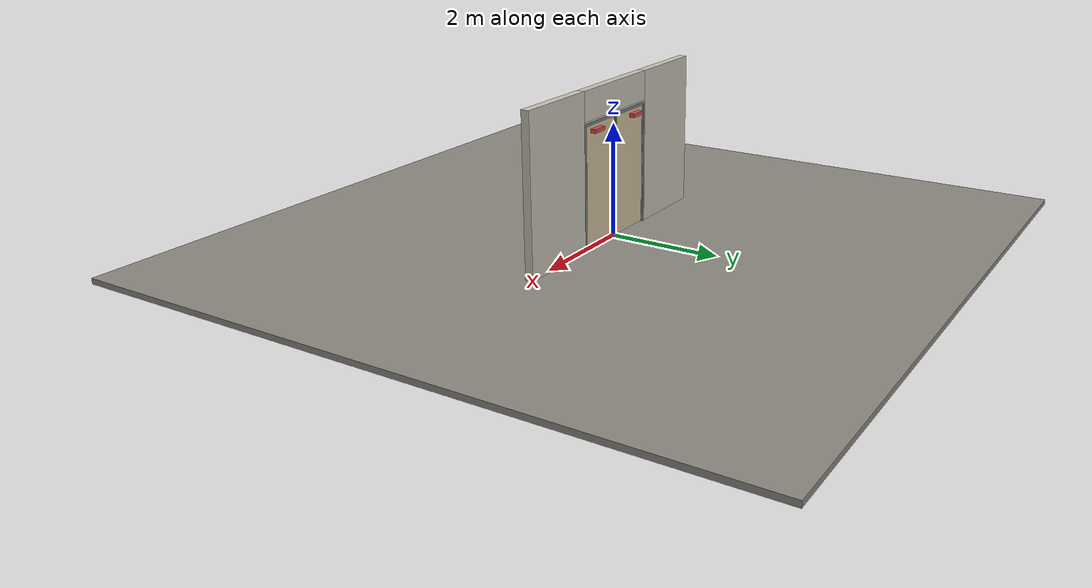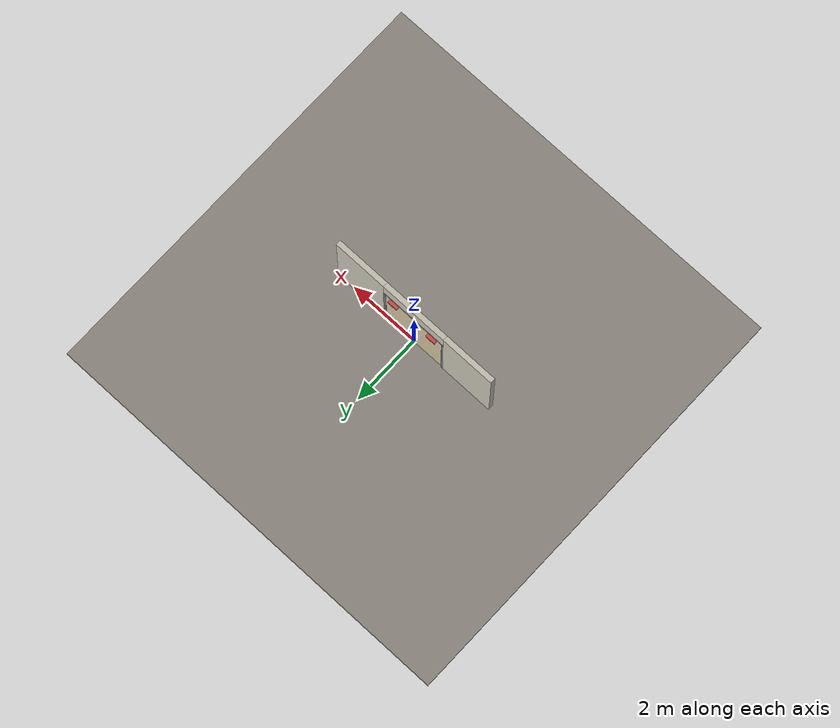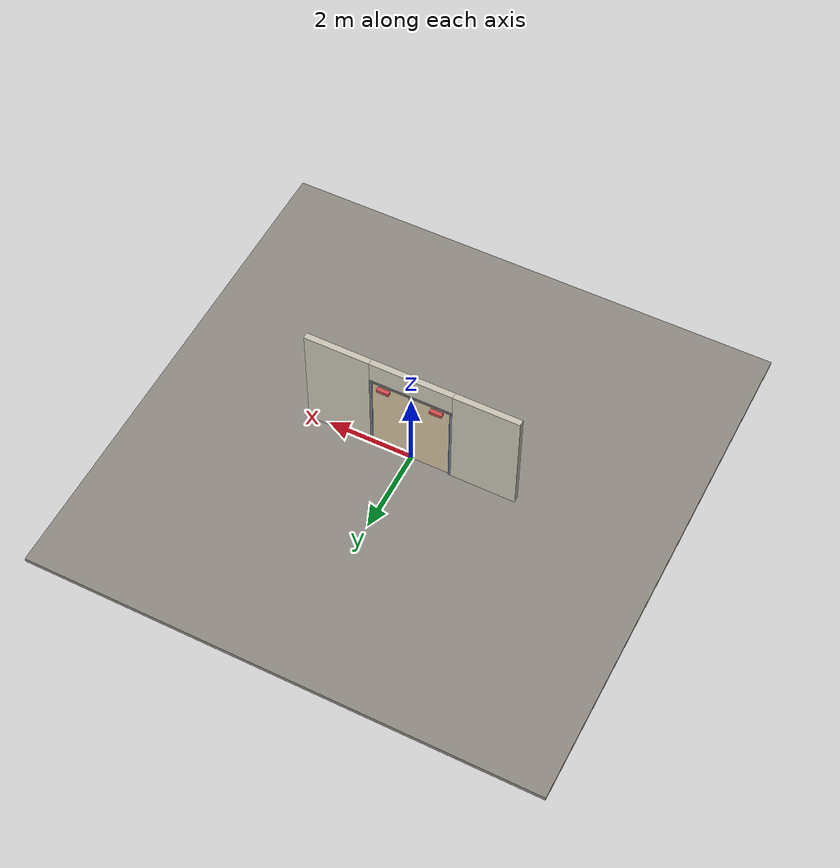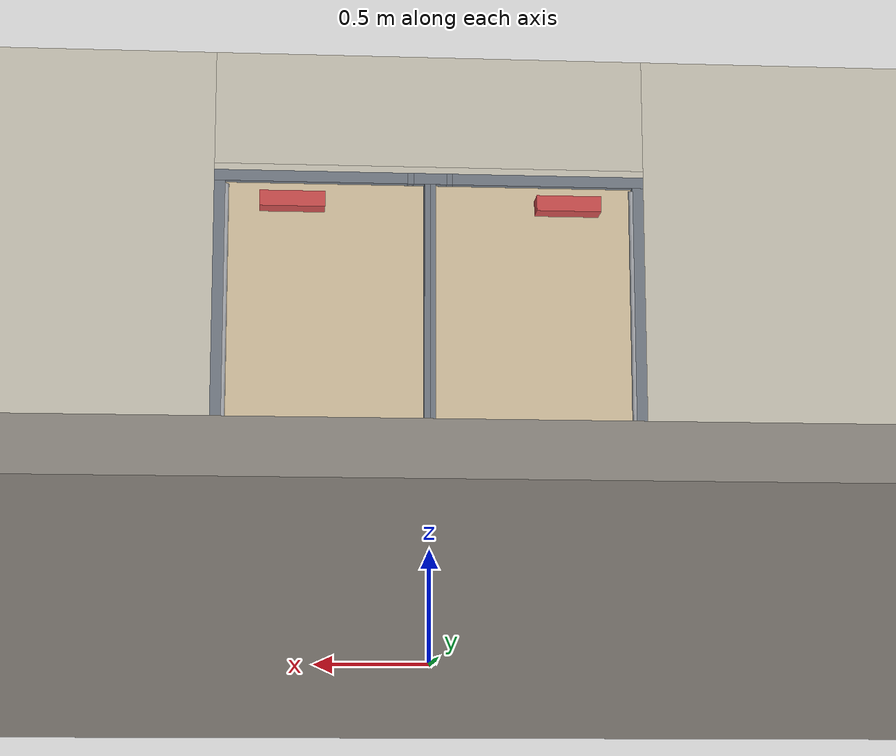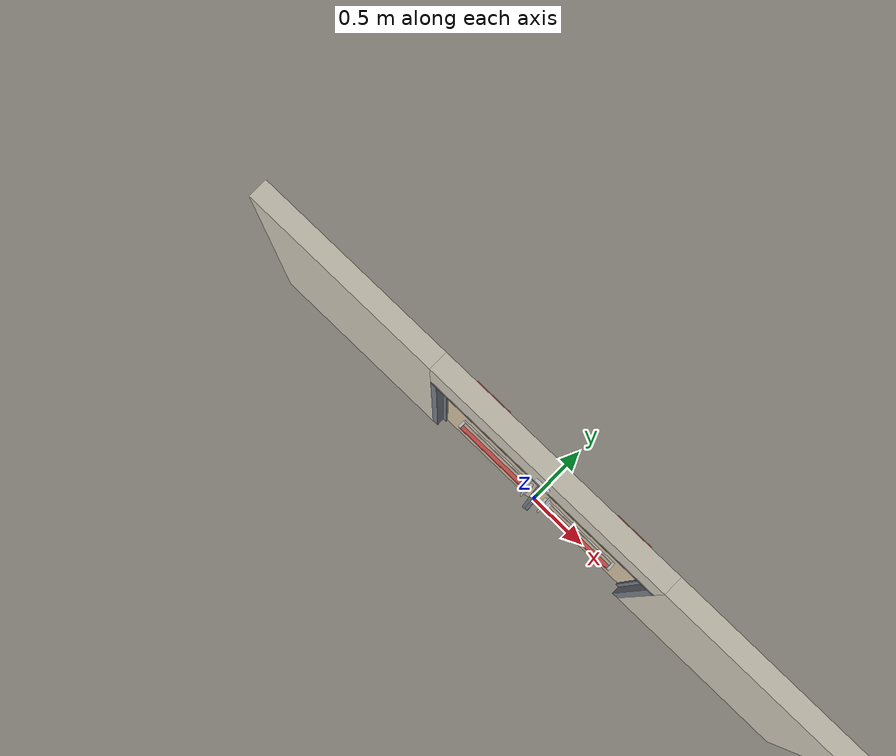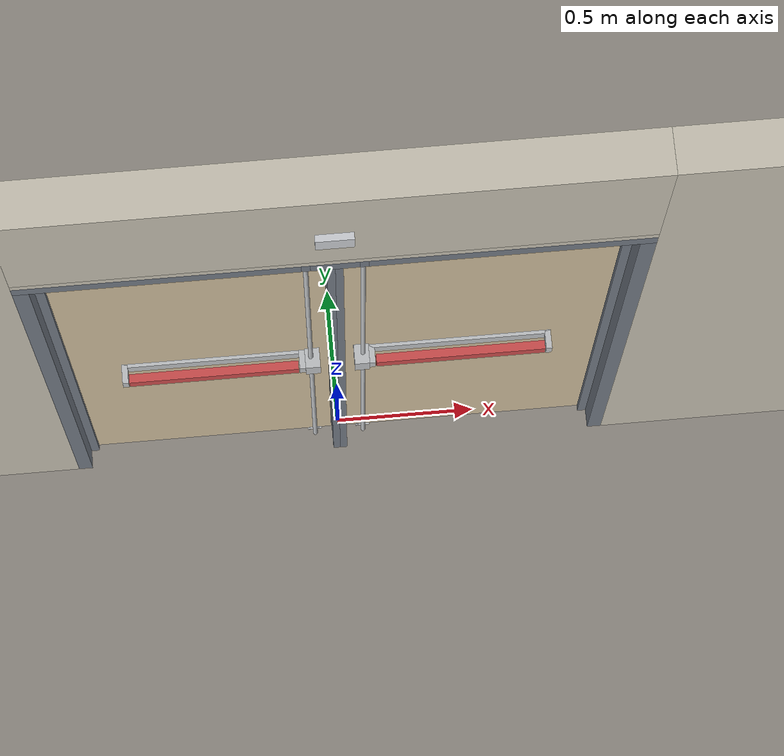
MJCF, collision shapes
<?xml version="1.0" ?>
<mujoco model="db0407_swing_double_full">
  <compiler angle="radian" meshdir="../../hardware" texturedir="../../textures" autolimits="true" inertiafromgeom="false"/>
  <option timestep="0.002" integrator="implicitfast" cone="elliptic" impratio="10" noslip_iterations="3">
    <flag multiccd="enable"/>
  </option>
  <size memory="16M"/>
  <default>
    <geom condim="4" solref="0.005 1" solimp="0.95 0.99 0.001"/>
    <joint solreflimit="0.005 1" solimplimit="0.95 0.99 0.001"/>
    <tendon solreflimit="0.005 1"/>
    <equality solref="0.002 1"/>
  </default>
  <visual>
    <headlight ambient="0.4 0.4 0.4" diffuse="0.7 0.7 0.7" specular="0.2 0.2 0.2"/>
    <quality shadowsize="4096"/>
    <map znear="0.01" zfar="60"/>
  </visual>
  <asset>
    <mesh name="closer_body_fdc4667657" file="closer_body_fdc4667657.obj"/>
    <mesh name="exit_sign_a6449bfa2c" file="exit_sign_a6449bfa2c.obj"/>
    <mesh name="touchbar_pad_ddc72763ea" file="touchbar_pad_ddc72763ea.obj"/>
    <material name="mat_floor" rgba="0.55 0.53 0.5 1" specular="0.2" shininess="0.15" reflectance="0"/>
    <material name="mat_wall" rgba="0.78 0.76 0.7 1" specular="0.2" shininess="0.1" reflectance="0"/>
    <material name="mat_leaf_a" rgba="0.82 0.75 0.62 1" specular="0.23" shininess="0.65" reflectance="0.02"/>
    <material name="mat_hinge" rgba="0.65 0.66 0.68 1" specular="0.74" shininess="0.5" reflectance="0.36"/>
    <material name="mat_op_stainless" rgba="0.75 0.76 0.77 1" specular="0.8" shininess="0.65" reflectance="0.4"/>
    <material name="mat_bolt" rgba="0.75 0.76 0.77 1" specular="0.8" shininess="0.65" reflectance="0.4"/>
    <material name="mat_closer" rgba="0.22 0.17 0.13 1" specular="0.8" shininess="0.6" reflectance="0.4"/>
    <material name="mat_exit_sign" rgba="0.85 0.1 0.1 1" specular="0.2" shininess="0.6" reflectance="0"/>
    <material name="mat_sign_bracket" rgba="0.8 0.81 0.83 1" specular="0.8" shininess="0.6" reflectance="0.4"/>
    <material name="mat_leaf_b" rgba="0.82 0.75 0.62 1" specular="0.23" shininess="0.65" reflectance="0.02"/>
    <material name="mat_frame" rgba="0.45 0.48 0.52 1" specular="0.32" shininess="0.6" reflectance="0.08"/>
    <texture name="skybox" type="skybox" builtin="gradient" rgb1="0.6 0.7 0.85" rgb2="0.9 0.92 0.95" width="256" height="256"/>
  </asset>
  <worldbody>
    <light name="sun" pos="1.5 -2.5 4" dir="-0.3 0.5 -0.8" directional="true" diffuse="0.8 0.8 0.8" specular="0.3 0.3 0.3" castshadow="true"/>
    <light name="fill" pos="-1.5 2.5 3" dir="0.3 -0.5 -0.7" directional="true" diffuse="0.35 0.35 0.4" castshadow="false"/>
    <camera name="robot_view" pos="0 -2.668312 1.812087" xyaxes="1 0 0 0 0.26963 0.962964" fovy="52"/>
    <camera name="far_view" pos="0 2.607312 1.812087" xyaxes="-1 0 0 0 -0.26963 0.962964" fovy="52"/>
    <camera name="iso" pos="-2.004737 -2.246262 2.234138" xyaxes="0.741536 -0.670913 0 0.242917 0.268487 0.932151" fovy="46"/>
    <camera name="detail_handle" pos="0.2845 -0.8305 1.296" xyaxes="0.97561 0.219512 0 -0.070934 0.315262 0.94635" fovy="38"/>
    <geom name="floor" type="box" size="6 6 0.05" pos="0 0 -0.05" material="mat_floor" group="0" contype="1" conaffinity="1" friction="0.8 0.005 0.0001" density="2400"/>
    <geom name="wall_left" type="box" size="0.76575 0.0725 1.3735" pos="-1.73425 -0.0305 1.3735" material="mat_wall" group="0" contype="1" conaffinity="1" friction="0.6 0.005 0.0001" density="800"/>
    <geom name="wall_right" type="box" size="0.76575 0.0725 1.3735" pos="1.73425 -0.0305 1.3735" material="mat_wall" group="0" contype="1" conaffinity="1" friction="0.6 0.005 0.0001" density="800"/>
    <geom name="wall_header" type="box" size="0.9685 0.0725 0.26" pos="0 -0.0305 2.487" material="mat_wall" group="0" contype="1" conaffinity="1" friction="0.6 0.005 0.0001" density="800"/>
    <geom name="leaf_a_bottom_strike_plate" type="box" size="0.0255 0.0255 0.00075" pos="-0.088 0 0.00075" material="mat_bolt" group="0" contype="1" conaffinity="1" friction="0.6 0.005 0.0001" density="7850"/>
    <geom name="leaf_a_bottom_strike_p" type="box" size="0.0215 0.004 0.00575" pos="-0.088 0.0145 0.00725" material="mat_bolt" group="0" contype="1" conaffinity="1" friction="0.6 0.005 0.0001" density="7850"/>
    <geom name="leaf_a_bottom_strike_n" type="box" size="0.0215 0.004 0.00575" pos="-0.088 -0.0145 0.00725" material="mat_bolt" group="0" contype="1" conaffinity="1" friction="0.6 0.005 0.0001" density="7850"/>
    <geom name="leaf_a_bottom_strike_e" type="box" size="0.004 0.0215 0.00575" pos="-0.0735 0 0.00725" material="mat_bolt" group="0" contype="1" conaffinity="1" friction="0.6 0.005 0.0001" density="7850"/>
    <geom name="exit_sign" type="mesh" mesh="exit_sign_a6449bfa2c" pos="0 -0.15 2.447" material="mat_exit_sign" group="2" contype="0" conaffinity="0" density="500"/>
    <geom name="exit_sign_bracket" type="box" size="0.05775 0.0115 0.035" pos="0 -0.114 2.447" material="mat_sign_bracket" group="2" contype="0" conaffinity="0" density="7850"/>
    <geom name="leaf_b_bottom_strike_plate" type="box" size="0.0255 0.0255 0.00075" pos="0.088 0 0.00075" material="mat_bolt" group="0" contype="1" conaffinity="1" friction="0.6 0.005 0.0001" density="7850"/>
    <geom name="leaf_b_bottom_strike_p" type="box" size="0.0215 0.004 0.00575" pos="0.088 0.0145 0.00725" material="mat_bolt" group="0" contype="1" conaffinity="1" friction="0.6 0.005 0.0001" density="7850"/>
    <geom name="leaf_b_bottom_strike_n" type="box" size="0.0215 0.004 0.00575" pos="0.088 -0.0145 0.00725" material="mat_bolt" group="0" contype="1" conaffinity="1" friction="0.6 0.005 0.0001" density="7850"/>
    <geom name="leaf_b_bottom_strike_e" type="box" size="0.004 0.0215 0.00575" pos="0.0735 0 0.00725" material="mat_bolt" group="0" contype="1" conaffinity="1" friction="0.6 0.005 0.0001" density="7850"/>
    <geom name="jamb_l" type="box" size="0.025 0.0725 1.0735" pos="-0.9435 -0.0305 1.0735" material="mat_frame" group="0" contype="1" conaffinity="1" friction="0.6 0.005 0.0001" density="300"/>
    <geom name="jamb_r" type="box" size="0.025 0.0725 1.0735" pos="0.9435 -0.0305 1.0735" material="mat_frame" group="0" contype="1" conaffinity="1" friction="0.6 0.005 0.0001" density="300"/>
    <geom name="jamb_head_pwall_-88_n" type="box" size="0.0135 0.046 0.025" pos="-0.088 -0.057 2.172" material="mat_frame" group="0" contype="1" conaffinity="1" friction="0.6 0.005 0.0001" density="300"/>
    <geom name="jamb_head_pwall_-88_p" type="box" size="0.0135 0.0155 0.025" pos="-0.088 0.0265 2.172" material="mat_frame" group="0" contype="1" conaffinity="1" friction="0.6 0.005 0.0001" density="300"/>
    <geom name="jamb_head_pback_-88" type="box" size="0.0135 0.011 0.0135" pos="-0.088 0 2.1835" material="mat_frame" group="0" contype="1" conaffinity="1" friction="0.6 0.005 0.0001" density="300"/>
    <geom name="jamb_head_pwall_88_n" type="box" size="0.0135 0.046 0.025" pos="0.088 -0.057 2.172" material="mat_frame" group="0" contype="1" conaffinity="1" friction="0.6 0.005 0.0001" density="300"/>
    <geom name="jamb_head_pwall_88_p" type="box" size="0.0135 0.0155 0.025" pos="0.088 0.0265 2.172" material="mat_frame" group="0" contype="1" conaffinity="1" friction="0.6 0.005 0.0001" density="300"/>
    <geom name="jamb_head_pback_88" type="box" size="0.0135 0.011 0.0135" pos="0.088 0 2.1835" material="mat_frame" group="0" contype="1" conaffinity="1" friction="0.6 0.005 0.0001" density="300"/>
    <geom name="jamb_head_0" type="box" size="0.4335 0.0725 0.025" pos="-0.535 -0.0305 2.172" material="mat_frame" group="0" contype="1" conaffinity="1" friction="0.6 0.005 0.0001" density="300"/>
    <geom name="jamb_head_1" type="box" size="0.0745 0.0725 0.025" pos="0 -0.0305 2.172" material="mat_frame" group="0" contype="1" conaffinity="1" friction="0.6 0.005 0.0001" density="300"/>
    <geom name="jamb_head_2" type="box" size="0.4335 0.0725 0.025" pos="0.535 -0.0305 2.172" material="mat_frame" group="0" contype="1" conaffinity="1" friction="0.6 0.005 0.0001" density="300"/>
    <geom name="head_stud" type="box" size="0.9685 0.0725 0.015" pos="0 -0.0305 2.212" material="mat_wall" group="0" contype="1" conaffinity="1" friction="0.6 0.005 0.0001" density="500"/>
    <geom name="stop_l" type="box" size="0.015 0.008 1.0735" pos="-0.9035 -0.0305 1.0735" material="mat_frame" group="0" contype="1" conaffinity="1" friction="0.6 0.005 0.0001" density="300"/>
    <geom name="stop_r" type="box" size="0.015 0.008 1.0735" pos="0.9035 -0.0305 1.0735" material="mat_frame" group="0" contype="1" conaffinity="1" friction="0.6 0.005 0.0001" density="300"/>
    <geom name="stop_head" type="box" size="0.9185 0.008 0.015" pos="0 -0.0305 2.132" material="mat_frame" group="0" contype="1" conaffinity="1" friction="0.6 0.005 0.0001" density="300"/>
    <geom name="mullion_a_seg" type="box" size="0.0125 0.0725 1.0735" pos="-0.0125 -0.0305 1.0735" material="mat_frame" group="0" contype="1" conaffinity="1" friction="0.6 0.005 0.0001" density="300"/>
    <geom name="mullion_b_seg" type="box" size="0.0125 0.0725 1.0735" pos="0.0125 -0.0305 1.0735" material="mat_frame" group="0" contype="1" conaffinity="1" friction="0.6 0.005 0.0001" density="300"/>
    <site name="approach_point" pos="0 -1.5 0" quat="1 0 0 0" size="0.05" rgba="0.2 0.9 0.2 0.5" group="4"/>
    <site name="goal_point" pos="0 1.5 0" quat="1 0 0 0" size="0.05" rgba="0.2 0.9 0.2 0.5" group="4"/>
    <site name="door_plane_center" pos="0 0 1.0735" quat="1 0 0 0" size="0.02" rgba="0.2 0.9 0.2 0.5" group="4"/>
    <site name="approach_point_2" pos="0 -1.5 0" quat="1 0 0 0" size="0.05" rgba="0.2 0.9 0.2 0.5" group="4"/>
    <site name="goal_point_2" pos="0 1.5 0" quat="1 0 0 0" size="0.05" rgba="0.2 0.9 0.2 0.5" group="4"/>
    <site name="door_plane_center_2" pos="0 0 1.0735" quat="1 0 0 0" size="0.02" rgba="0.2 0.9 0.2 0.5" group="4"/>
    <site name="approach_point_3" pos="0 -1.5 0" quat="1 0 0 0" size="0.05" rgba="0.2 0.9 0.2 0.5" group="4"/>
    <site name="goal_point_3" pos="0 1.5 0" quat="1 0 0 0" size="0.05" rgba="0.2 0.9 0.2 0.5" group="4"/>
    <site name="door_plane_center_3" pos="0 0 1.0735" quat="1 0 0 0" size="0.02" rgba="0.2 0.9 0.2 0.5" group="4"/>
    <body name="leaf_a" pos="-0.9185 0 0">
      <inertial pos="0.418008 0.012635 1.278358" mass="50.62011" quat="-0.465738 0.500992 0.511296 0.520261" diaginertia="3.392954999 22.464516035 25.759502174"/>
      <joint name="leaf_a_hinge" type="hinge" axis="0 0 1" pos="0.003 0.029 0" limited="true" range="0 1.570796" damping="12.268966" frictionloss="2.72861" stiffness="12.197635" springref="-2.749713" armature="0.02"/>
      <geom name="leaf_a_slab" type="box" size="0.44375 0.022 1.0635" pos="0.44675 0 1.0795" material="mat_leaf_a" group="0" contype="1" conaffinity="1" friction="0.4 0.005 0.0001" density="1"/>
      <geom name="hinge_continuous" type="cylinder" size="0.0136 1.0535" pos="0.003 0.029 1.0795" material="mat_hinge" group="1" contype="0" conaffinity="0" density="2700"/>
      <geom name="leaf_a_exit_device_rail" type="box" size="0.308438 0.006 0.025" pos="0.502062 -0.028 1.016" material="mat_op_stainless" group="0" contype="1" conaffinity="1" friction="0.6 0.005 0.0001" density="3000"/>
      <geom name="leaf_a_exit_device_rail_end_n" type="box" size="0.01 0.0325 0.025" pos="0.203625 -0.0545 1.016" material="mat_op_stainless" group="0" contype="1" conaffinity="1" friction="0.6 0.005 0.0001" density="3000"/>
      <geom name="leaf_a_exit_device_rail_end_p" type="box" size="0.01 0.0325 0.025" pos="0.8005 -0.0545 1.016" material="mat_op_stainless" group="0" contype="1" conaffinity="1" friction="0.6 0.005 0.0001" density="3000"/>
      <geom name="leaf_a_exit_device_case" type="box" size="0.025 0.034125 0.0375" pos="0.8355 -0.056125 1.016" material="mat_op_stainless" group="0" contype="1" conaffinity="1" friction="0.6 0.005 0.0001" density="3000"/>
      <geom name="leaf_a_exit_device_rod_top" type="cylinder" size="0.008 0.52975" pos="0.8305 -0.052 1.58325" material="mat_op_stainless" group="1" contype="0" conaffinity="0" density="7850"/>
      <geom name="leaf_a_exit_device_rod_bot" type="cylinder" size="0.008 0.46625" pos="0.8305 -0.052 0.51225" material="mat_op_stainless" group="1" contype="0" conaffinity="0" density="7850"/>
      <geom name="closer_body" type="mesh" mesh="closer_body_fdc4667657" pos="0.3 0.022 2.047" quat="-0.707107 0.707107 0 0" material="mat_closer" group="1" contype="0" conaffinity="0" density="2000"/>
      <geom name="closer_body_col" type="box" size="0.145 0.05 0.035" pos="0.3 0.072 2.047" material="mat_closer" group="3" contype="1" conaffinity="1" rgba="0.8 0.3 0.3 0.25" friction="0.6 0.005 0.0001" density="2000"/>
      <site name="leaf_a_edge_mid" pos="0.8905 0 1.0635" quat="1 0 0 0" size="0.02" rgba="0.2 0.9 0.2 0.5" group="4"/>
      <body name="leaf_a_exit_device" pos="0.502062 -0.022 1.016">
        <inertial pos="0 -0.05 0" mass="4.624087" quat="0 0 0.707107 0.707107" diaginertia="0.001127121 0.125928648 0.126362156"/>
        <joint name="leaf_a_exit_device_slide" type="slide" axis="0 1 0" limited="true" range="0 0.016" damping="163.508073" frictionloss="0.5" stiffness="1400" springref="-0.015714" armature="0.15"/>
        <geom name="leaf_a_exit_device_pad" type="mesh" mesh="touchbar_pad_ddc72763ea" pos="0 0 0" quat="0.707107 0.707107 0 0" material="mat_op_stainless" group="1" contype="0" conaffinity="0" density="3000"/>
        <geom name="leaf_a_exit_device_pad_col" type="box" size="0.285438 0.015 0.0225" pos="0 -0.05 0" material="mat_op_stainless" group="3" contype="1" conaffinity="1" rgba="0.8 0.3 0.3 0.25" friction="0.8 0.01 0.0001" density="3000"/>
        <site name="leaf_a_exit_device_push" pos="0 -0.065 0" quat="1 0 0 0" size="0.015" rgba="0.2 0.9 0.2 0.5" group="4"/>
      </body>
      <body name="leaf_a_top_latch" pos="0.8305 0 2.143">
        <inertial pos="0 0 -0.0155" mass="0.151026" quat="0.707107 0 0.707107 0" diaginertia="0.00000654 0.000053442 0.000053442"/>
        <joint name="leaf_a_top_latch_slide" type="slide" axis="0 0 -1" limited="true" range="0 0.019" damping="2" frictionloss="0.3" stiffness="800" springref="-0.01" armature="0.1"/>
        <geom name="leaf_a_top_latch_capsule" type="capsule" size="0.0095 0.025" pos="0 0 -0.0155" material="mat_bolt" group="0" contype="1" conaffinity="1" friction="0.2 0.005 0.0001" density="8500"/>
      </body>
      <body name="leaf_a_bottom_latch" pos="0.8305 0 0.03">
        <inertial pos="0 0 0.012" mass="0.167896" quat="0.707107 0 0.707107 0" diaginertia="0.000007301 0.000072388 0.000072388"/>
        <joint name="leaf_a_bottom_latch_slide" type="slide" axis="0 0 1" limited="true" range="0 0.026" damping="2" frictionloss="0.3" stiffness="800" springref="-0.01" armature="0.1"/>
        <geom name="leaf_a_bottom_latch_capsule" type="capsule" size="0.0095 0.0285" pos="0 0 0.012" material="mat_bolt" group="0" contype="1" conaffinity="1" friction="0.2 0.005 0.0001" density="8500"/>
      </body>
    </body>
    <body name="leaf_b" pos="0.9185 0 0">
      <inertial pos="-0.418008 0.012635 1.278358" mass="50.62011" quat="0.520261 -0.511296 -0.500992 -0.465738" diaginertia="3.392954999 22.464516035 25.759502174"/>
      <joint name="leaf_b_hinge" type="hinge" axis="0 0 -1" pos="-0.003 0.029 0" limited="true" range="0 1.570796" damping="12.268966" frictionloss="2.72861" stiffness="12.197635" springref="-2.749713" armature="0.02"/>
      <geom name="leaf_b_slab" type="box" size="0.44375 0.022 1.0635" pos="-0.44675 0 1.0795" material="mat_leaf_b" group="0" contype="1" conaffinity="1" friction="0.4 0.005 0.0001" density="1"/>
      <geom name="hinge_continuous_2" type="cylinder" size="0.0136 1.0535" pos="-0.003 0.029 1.0795" material="mat_hinge" group="1" contype="0" conaffinity="0" density="2700"/>
      <geom name="leaf_b_exit_device_rail" type="box" size="0.308438 0.006 0.025" pos="-0.502062 -0.028 1.016" material="mat_op_stainless" group="0" contype="1" conaffinity="1" friction="0.6 0.005 0.0001" density="3000"/>
      <geom name="leaf_b_exit_device_rail_end_n" type="box" size="0.01 0.0325 0.025" pos="-0.8005 -0.0545 1.016" material="mat_op_stainless" group="0" contype="1" conaffinity="1" friction="0.6 0.005 0.0001" density="3000"/>
      <geom name="leaf_b_exit_device_rail_end_p" type="box" size="0.01 0.0325 0.025" pos="-0.203625 -0.0545 1.016" material="mat_op_stainless" group="0" contype="1" conaffinity="1" friction="0.6 0.005 0.0001" density="3000"/>
      <geom name="leaf_b_exit_device_case" type="box" size="0.025 0.034125 0.0375" pos="-0.8355 -0.056125 1.016" material="mat_op_stainless" group="0" contype="1" conaffinity="1" friction="0.6 0.005 0.0001" density="3000"/>
      <geom name="leaf_b_exit_device_rod_top" type="cylinder" size="0.008 0.52975" pos="-0.8305 -0.052 1.58325" material="mat_op_stainless" group="1" contype="0" conaffinity="0" density="7850"/>
      <geom name="leaf_b_exit_device_rod_bot" type="cylinder" size="0.008 0.46625" pos="-0.8305 -0.052 0.51225" material="mat_op_stainless" group="1" contype="0" conaffinity="0" density="7850"/>
      <geom name="closer_body_2" type="mesh" mesh="closer_body_fdc4667657" pos="-0.3 0.022 2.047" quat="0 0 0.707107 0.707107" material="mat_closer" group="1" contype="0" conaffinity="0" density="2000"/>
      <geom name="closer_body_col_2" type="box" size="0.145 0.05 0.035" pos="-0.3 0.072 2.047" material="mat_closer" group="3" contype="1" conaffinity="1" rgba="0.8 0.3 0.3 0.25" friction="0.6 0.005 0.0001" density="2000"/>
      <site name="leaf_b_edge_mid" pos="-0.8905 0 1.0635" quat="1 0 0 0" size="0.02" rgba="0.2 0.9 0.2 0.5" group="4"/>
      <body name="leaf_b_exit_device" pos="-0.502062 -0.022 1.016">
        <inertial pos="0 -0.05 0" mass="4.624087" quat="0 0 -0.707107 0.707107" diaginertia="0.001127121 0.125928648 0.126362156"/>
        <joint name="leaf_b_exit_device_slide" type="slide" axis="0 1 0" limited="true" range="0 0.016" damping="163.508073" frictionloss="0.5" stiffness="1400" springref="-0.015714" armature="0.15"/>
        <geom name="leaf_b_exit_device_pad" type="mesh" mesh="touchbar_pad_ddc72763ea" pos="0 0 0" quat="0 0 -0.707107 0.707107" material="mat_op_stainless" group="1" contype="0" conaffinity="0" density="3000"/>
        <geom name="leaf_b_exit_device_pad_col" type="box" size="0.285438 0.015 0.0225" pos="0 -0.05 0" material="mat_op_stainless" group="3" contype="1" conaffinity="1" rgba="0.8 0.3 0.3 0.25" friction="0.8 0.01 0.0001" density="3000"/>
        <site name="leaf_b_exit_device_push" pos="0 -0.065 0" quat="1 0 0 0" size="0.015" rgba="0.2 0.9 0.2 0.5" group="4"/>
      </body>
      <body name="leaf_b_top_latch" pos="-0.8305 0 2.143">
        <inertial pos="0 0 -0.0155" mass="0.151026" quat="0.707107 0 0.707107 0" diaginertia="0.00000654 0.000053442 0.000053442"/>
        <joint name="leaf_b_top_latch_slide" type="slide" axis="0 0 -1" limited="true" range="0 0.019" damping="2" frictionloss="0.3" stiffness="800" springref="-0.01" armature="0.1"/>
        <geom name="leaf_b_top_latch_capsule" type="capsule" size="0.0095 0.025" pos="0 0 -0.0155" material="mat_bolt" group="0" contype="1" conaffinity="1" friction="0.2 0.005 0.0001" density="8500"/>
      </body>
      <body name="leaf_b_bottom_latch" pos="-0.8305 0 0.03">
        <inertial pos="0 0 0.012" mass="0.167896" quat="0.707107 0 0.707107 0" diaginertia="0.000007301 0.000072388 0.000072388"/>
        <joint name="leaf_b_bottom_latch_slide" type="slide" axis="0 0 1" limited="true" range="0 0.026" damping="2" frictionloss="0.3" stiffness="800" springref="-0.01" armature="0.1"/>
        <geom name="leaf_b_bottom_latch_capsule" type="capsule" size="0.0095 0.0285" pos="0 0 0.012" material="mat_bolt" group="0" contype="1" conaffinity="1" friction="0.2 0.005 0.0001" density="8500"/>
      </body>
    </body>
  </worldbody>
  <tendon>
    <fixed name="leaf_a_top_latch_coupling" limited="true" range="0 10">
      <joint joint="leaf_a_top_latch_slide" coef="1"/>
      <joint joint="leaf_a_exit_device_slide" coef="-1.142857"/>
    </fixed>
    <fixed name="leaf_a_bottom_latch_coupling" limited="true" range="0 10">
      <joint joint="leaf_a_bottom_latch_slide" coef="1"/>
      <joint joint="leaf_a_exit_device_slide" coef="-1.56391"/>
    </fixed>
    <fixed name="leaf_b_top_latch_coupling" limited="true" range="0 10">
      <joint joint="leaf_b_top_latch_slide" coef="1"/>
      <joint joint="leaf_b_exit_device_slide" coef="-1.142857"/>
    </fixed>
    <fixed name="leaf_b_bottom_latch_coupling" limited="true" range="0 10">
      <joint joint="leaf_b_bottom_latch_slide" coef="1"/>
      <joint joint="leaf_b_exit_device_slide" coef="-1.56391"/>
    </fixed>
  </tendon>
  <sensor>
    <jointpos name="leaf_a_hinge_pos" joint="leaf_a_hinge"/>
    <jointvel name="leaf_a_hinge_vel" joint="leaf_a_hinge"/>
    <jointpos name="leaf_a_exit_device_slide_pos" joint="leaf_a_exit_device_slide"/>
    <jointvel name="leaf_a_exit_device_slide_vel" joint="leaf_a_exit_device_slide"/>
    <jointpos name="leaf_a_top_latch_slide_pos" joint="leaf_a_top_latch_slide"/>
    <jointvel name="leaf_a_top_latch_slide_vel" joint="leaf_a_top_latch_slide"/>
    <jointpos name="leaf_a_bottom_latch_slide_pos" joint="leaf_a_bottom_latch_slide"/>
    <jointvel name="leaf_a_bottom_latch_slide_vel" joint="leaf_a_bottom_latch_slide"/>
    <jointpos name="leaf_b_hinge_pos" joint="leaf_b_hinge"/>
    <jointvel name="leaf_b_hinge_vel" joint="leaf_b_hinge"/>
    <jointpos name="leaf_b_exit_device_slide_pos" joint="leaf_b_exit_device_slide"/>
    <jointvel name="leaf_b_exit_device_slide_vel" joint="leaf_b_exit_device_slide"/>
    <jointpos name="leaf_b_top_latch_slide_pos" joint="leaf_b_top_latch_slide"/>
    <jointvel name="leaf_b_top_latch_slide_vel" joint="leaf_b_top_latch_slide"/>
    <jointpos name="leaf_b_bottom_latch_slide_pos" joint="leaf_b_bottom_latch_slide"/>
    <jointvel name="leaf_b_bottom_latch_slide_vel" joint="leaf_b_bottom_latch_slide"/>
  </sensor>
</mujoco>
